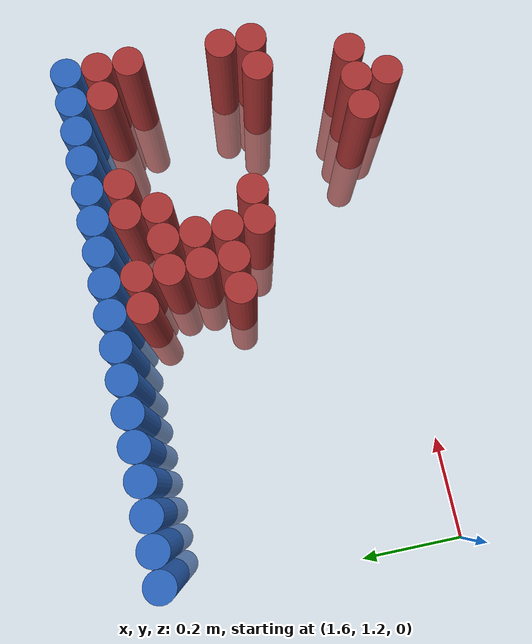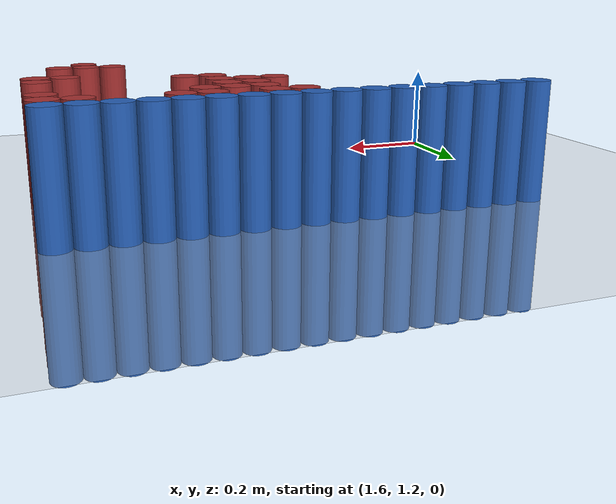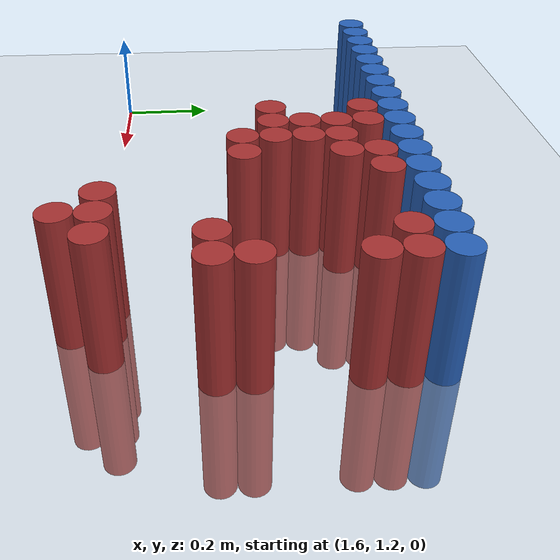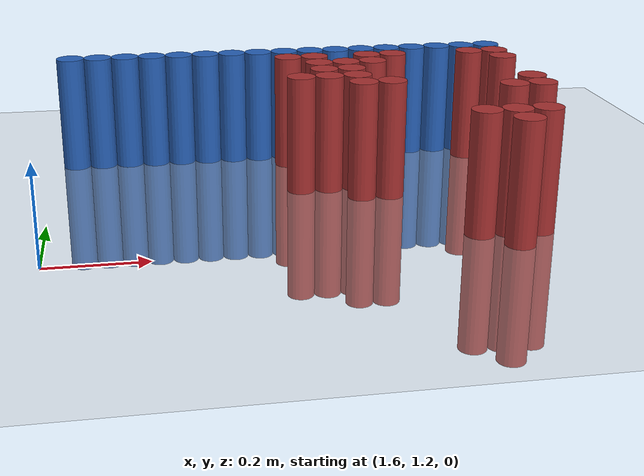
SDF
<sdf version="1.6">
 <world name="default">
  <model name="ground_plane">
   <static>1</static>
   <link name="link">
    <collision name="collision">
     <geometry><plane><normal>0 0 1</normal><size>100 100</size></plane></geometry>
     <surface><friction><ode><mu>100</mu><mu2>50</mu2></ode></friction></surface>
    </collision>
    <visual name="visual">
     <cast_shadows>0</cast_shadows>
     <geometry><plane><normal>0 0 1</normal><size>100 100</size></plane></geometry>
     <material>
      <script><uri>file://media/materials/scripts/gazebo.material</uri><name>Gazebo/Grey</name></script>
     </material>
    </visual>
   </link>
  </model>
  <model name="unit_cylinder_82">
   <static>1</static>
   <pose>1.650000 1.770000 0.000000 0.000000 0.000000 0.000000</pose>
   <link name="link">
    <inertial>
     <mass>1</mass>
     <inertia><ixx>0.145833</ixx><ixy>0</ixy><ixz>0</ixz><iyy>0.145833</iyy><iyz>0</iyz><izz>0.125</izz></inertia>
    </inertial>
    <collision name="collision">
     <geometry><cylinder><radius>0.030000</radius><length>0.5</length></cylinder></geometry>
    </collision>
    <visual name="visual">
     <geometry><cylinder><radius>0.030000</radius><length>0.5</length></cylinder></geometry>
     <material>
      <ambient>0.152000 0.379000 0.720000 1</ambient>
      <diffuse>0.152000 0.379000 0.720000 1</diffuse>
     </material>
     <material>
      <script><name>Gazebo/Grey</name><uri>file://media/materials/scripts/gazebo.material</uri></script>
     </material>
    </visual>
   </link>
  </model>
  <model name="unit_cylinder_84">
   <static>1</static>
   <pose>1.710000 1.770000 0.000000 0.000000 0.000000 0.000000</pose>
   <link name="link">
    <inertial>
     <mass>1</mass>
     <inertia><ixx>0.145833</ixx><ixy>0</ixy><ixz>0</ixz><iyy>0.145833</iyy><iyz>0</iyz><izz>0.125</izz></inertia>
    </inertial>
    <collision name="collision">
     <geometry><cylinder><radius>0.030000</radius><length>0.5</length></cylinder></geometry>
    </collision>
    <visual name="visual">
     <geometry><cylinder><radius>0.030000</radius><length>0.5</length></cylinder></geometry>
     <material>
      <ambient>0.152000 0.379000 0.720000 1</ambient>
      <diffuse>0.152000 0.379000 0.720000 1</diffuse>
     </material>
     <material>
      <script><name>Gazebo/Grey</name><uri>file://media/materials/scripts/gazebo.material</uri></script>
     </material>
    </visual>
   </link>
  </model>
  <model name="unit_cylinder_86">
   <static>1</static>
   <pose>1.770000 1.770000 0.000000 0.000000 0.000000 0.000000</pose>
   <link name="link">
    <inertial>
     <mass>1</mass>
     <inertia><ixx>0.145833</ixx><ixy>0</ixy><ixz>0</ixz><iyy>0.145833</iyy><iyz>0</iyz><izz>0.125</izz></inertia>
    </inertial>
    <collision name="collision">
     <geometry><cylinder><radius>0.030000</radius><length>0.5</length></cylinder></geometry>
    </collision>
    <visual name="visual">
     <geometry><cylinder><radius>0.030000</radius><length>0.5</length></cylinder></geometry>
     <material>
      <ambient>0.152000 0.379000 0.720000 1</ambient>
      <diffuse>0.152000 0.379000 0.720000 1</diffuse>
     </material>
     <material>
      <script><name>Gazebo/Grey</name><uri>file://media/materials/scripts/gazebo.material</uri></script>
     </material>
    </visual>
   </link>
  </model>
  <model name="unit_cylinder_88">
   <static>1</static>
   <pose>1.830000 1.770000 0.000000 0.000000 0.000000 0.000000</pose>
   <link name="link">
    <inertial>
     <mass>1</mass>
     <inertia><ixx>0.145833</ixx><ixy>0</ixy><ixz>0</ixz><iyy>0.145833</iyy><iyz>0</iyz><izz>0.125</izz></inertia>
    </inertial>
    <collision name="collision">
     <geometry><cylinder><radius>0.030000</radius><length>0.5</length></cylinder></geometry>
    </collision>
    <visual name="visual">
     <geometry><cylinder><radius>0.030000</radius><length>0.5</length></cylinder></geometry>
     <material>
      <ambient>0.152000 0.379000 0.720000 1</ambient>
      <diffuse>0.152000 0.379000 0.720000 1</diffuse>
     </material>
     <material>
      <script><name>Gazebo/Grey</name><uri>file://media/materials/scripts/gazebo.material</uri></script>
     </material>
    </visual>
   </link>
  </model>
  <model name="unit_cylinder_90">
   <static>1</static>
   <pose>1.890000 1.770000 0.000000 0.000000 0.000000 0.000000</pose>
   <link name="link">
    <inertial>
     <mass>1</mass>
     <inertia><ixx>0.145833</ixx><ixy>0</ixy><ixz>0</ixz><iyy>0.145833</iyy><iyz>0</iyz><izz>0.125</izz></inertia>
    </inertial>
    <collision name="collision">
     <geometry><cylinder><radius>0.030000</radius><length>0.5</length></cylinder></geometry>
    </collision>
    <visual name="visual">
     <geometry><cylinder><radius>0.030000</radius><length>0.5</length></cylinder></geometry>
     <material>
      <ambient>0.152000 0.379000 0.720000 1</ambient>
      <diffuse>0.152000 0.379000 0.720000 1</diffuse>
     </material>
     <material>
      <script><name>Gazebo/Grey</name><uri>file://media/materials/scripts/gazebo.material</uri></script>
     </material>
    </visual>
   </link>
  </model>
  <model name="unit_cylinder_92">
   <static>1</static>
   <pose>1.950000 1.770000 0.000000 0.000000 0.000000 0.000000</pose>
   <link name="link">
    <inertial>
     <mass>1</mass>
     <inertia><ixx>0.145833</ixx><ixy>0</ixy><ixz>0</ixz><iyy>0.145833</iyy><iyz>0</iyz><izz>0.125</izz></inertia>
    </inertial>
    <collision name="collision">
     <geometry><cylinder><radius>0.030000</radius><length>0.5</length></cylinder></geometry>
    </collision>
    <visual name="visual">
     <geometry><cylinder><radius>0.030000</radius><length>0.5</length></cylinder></geometry>
     <material>
      <ambient>0.152000 0.379000 0.720000 1</ambient>
      <diffuse>0.152000 0.379000 0.720000 1</diffuse>
     </material>
     <material>
      <script><name>Gazebo/Grey</name><uri>file://media/materials/scripts/gazebo.material</uri></script>
     </material>
    </visual>
   </link>
  </model>
  <model name="unit_cylinder_94">
   <static>1</static>
   <pose>2.010000 1.770000 0.000000 0.000000 0.000000 0.000000</pose>
   <link name="link">
    <inertial>
     <mass>1</mass>
     <inertia><ixx>0.145833</ixx><ixy>0</ixy><ixz>0</ixz><iyy>0.145833</iyy><iyz>0</iyz><izz>0.125</izz></inertia>
    </inertial>
    <collision name="collision">
     <geometry><cylinder><radius>0.030000</radius><length>0.5</length></cylinder></geometry>
    </collision>
    <visual name="visual">
     <geometry><cylinder><radius>0.030000</radius><length>0.5</length></cylinder></geometry>
     <material>
      <ambient>0.152000 0.379000 0.720000 1</ambient>
      <diffuse>0.152000 0.379000 0.720000 1</diffuse>
     </material>
     <material>
      <script><name>Gazebo/Grey</name><uri>file://media/materials/scripts/gazebo.material</uri></script>
     </material>
    </visual>
   </link>
  </model>
  <model name="unit_cylinder_95">
   <static>1</static>
   <pose>2.070000 1.770000 0.000000 0.000000 0.000000 0.000000</pose>
   <link name="link">
    <inertial>
     <mass>1</mass>
     <inertia><ixx>0.145833</ixx><ixy>0</ixy><ixz>0</ixz><iyy>0.145833</iyy><iyz>0</iyz><izz>0.125</izz></inertia>
    </inertial>
    <collision name="collision">
     <geometry><cylinder><radius>0.030000</radius><length>0.5</length></cylinder></geometry>
    </collision>
    <visual name="visual">
     <geometry><cylinder><radius>0.030000</radius><length>0.5</length></cylinder></geometry>
     <material>
      <ambient>0.152000 0.379000 0.720000 1</ambient>
      <diffuse>0.152000 0.379000 0.720000 1</diffuse>
     </material>
     <material>
      <script><name>Gazebo/Grey</name><uri>file://media/materials/scripts/gazebo.material</uri></script>
     </material>
    </visual>
   </link>
  </model>
  <model name="unit_cylinder_96">
   <static>1</static>
   <pose>2.130000 1.770000 0.000000 0.000000 0.000000 0.000000</pose>
   <link name="link">
    <inertial>
     <mass>1</mass>
     <inertia><ixx>0.145833</ixx><ixy>0</ixy><ixz>0</ixz><iyy>0.145833</iyy><iyz>0</iyz><izz>0.125</izz></inertia>
    </inertial>
    <collision name="collision">
     <geometry><cylinder><radius>0.030000</radius><length>0.5</length></cylinder></geometry>
    </collision>
    <visual name="visual">
     <geometry><cylinder><radius>0.030000</radius><length>0.5</length></cylinder></geometry>
     <material>
      <ambient>0.152000 0.379000 0.720000 1</ambient>
      <diffuse>0.152000 0.379000 0.720000 1</diffuse>
     </material>
     <material>
      <script><name>Gazebo/Grey</name><uri>file://media/materials/scripts/gazebo.material</uri></script>
     </material>
    </visual>
   </link>
  </model>
  <model name="unit_cylinder_97">
   <static>1</static>
   <pose>2.190000 1.770000 0.000000 0.000000 0.000000 0.000000</pose>
   <link name="link">
    <inertial>
     <mass>1</mass>
     <inertia><ixx>0.145833</ixx><ixy>0</ixy><ixz>0</ixz><iyy>0.145833</iyy><iyz>0</iyz><izz>0.125</izz></inertia>
    </inertial>
    <collision name="collision">
     <geometry><cylinder><radius>0.030000</radius><length>0.5</length></cylinder></geometry>
    </collision>
    <visual name="visual">
     <geometry><cylinder><radius>0.030000</radius><length>0.5</length></cylinder></geometry>
     <material>
      <ambient>0.152000 0.379000 0.720000 1</ambient>
      <diffuse>0.152000 0.379000 0.720000 1</diffuse>
     </material>
     <material>
      <script><name>Gazebo/Grey</name><uri>file://media/materials/scripts/gazebo.material</uri></script>
     </material>
    </visual>
   </link>
  </model>
  <model name="unit_cylinder_98">
   <static>1</static>
   <pose>2.250000 1.770000 0.000000 0.000000 0.000000 0.000000</pose>
   <link name="link">
    <inertial>
     <mass>1</mass>
     <inertia><ixx>0.145833</ixx><ixy>0</ixy><ixz>0</ixz><iyy>0.145833</iyy><iyz>0</iyz><izz>0.125</izz></inertia>
    </inertial>
    <collision name="collision">
     <geometry><cylinder><radius>0.030000</radius><length>0.5</length></cylinder></geometry>
    </collision>
    <visual name="visual">
     <geometry><cylinder><radius>0.030000</radius><length>0.5</length></cylinder></geometry>
     <material>
      <ambient>0.152000 0.379000 0.720000 1</ambient>
      <diffuse>0.152000 0.379000 0.720000 1</diffuse>
     </material>
     <material>
      <script><name>Gazebo/Grey</name><uri>file://media/materials/scripts/gazebo.material</uri></script>
     </material>
    </visual>
   </link>
  </model>
  <model name="unit_cylinder_99">
   <static>1</static>
   <pose>2.310000 1.770000 0.000000 0.000000 0.000000 0.000000</pose>
   <link name="link">
    <inertial>
     <mass>1</mass>
     <inertia><ixx>0.145833</ixx><ixy>0</ixy><ixz>0</ixz><iyy>0.145833</iyy><iyz>0</iyz><izz>0.125</izz></inertia>
    </inertial>
    <collision name="collision">
     <geometry><cylinder><radius>0.030000</radius><length>0.5</length></cylinder></geometry>
    </collision>
    <visual name="visual">
     <geometry><cylinder><radius>0.030000</radius><length>0.5</length></cylinder></geometry>
     <material>
      <ambient>0.152000 0.379000 0.720000 1</ambient>
      <diffuse>0.152000 0.379000 0.720000 1</diffuse>
     </material>
     <material>
      <script><name>Gazebo/Grey</name><uri>file://media/materials/scripts/gazebo.material</uri></script>
     </material>
    </visual>
   </link>
  </model>
  <model name="unit_cylinder_100">
   <static>1</static>
   <pose>2.370000 1.770000 0.000000 0.000000 0.000000 0.000000</pose>
   <link name="link">
    <inertial>
     <mass>1</mass>
     <inertia><ixx>0.145833</ixx><ixy>0</ixy><ixz>0</ixz><iyy>0.145833</iyy><iyz>0</iyz><izz>0.125</izz></inertia>
    </inertial>
    <collision name="collision">
     <geometry><cylinder><radius>0.030000</radius><length>0.5</length></cylinder></geometry>
    </collision>
    <visual name="visual">
     <geometry><cylinder><radius>0.030000</radius><length>0.5</length></cylinder></geometry>
     <material>
      <ambient>0.152000 0.379000 0.720000 1</ambient>
      <diffuse>0.152000 0.379000 0.720000 1</diffuse>
     </material>
     <material>
      <script><name>Gazebo/Grey</name><uri>file://media/materials/scripts/gazebo.material</uri></script>
     </material>
    </visual>
   </link>
  </model>
  <model name="unit_cylinder_101">
   <static>1</static>
   <pose>2.430000 1.770000 0.000000 0.000000 0.000000 0.000000</pose>
   <link name="link">
    <inertial>
     <mass>1</mass>
     <inertia><ixx>0.145833</ixx><ixy>0</ixy><ixz>0</ixz><iyy>0.145833</iyy><iyz>0</iyz><izz>0.125</izz></inertia>
    </inertial>
    <collision name="collision">
     <geometry><cylinder><radius>0.030000</radius><length>0.5</length></cylinder></geometry>
    </collision>
    <visual name="visual">
     <geometry><cylinder><radius>0.030000</radius><length>0.5</length></cylinder></geometry>
     <material>
      <ambient>0.152000 0.379000 0.720000 1</ambient>
      <diffuse>0.152000 0.379000 0.720000 1</diffuse>
     </material>
     <material>
      <script><name>Gazebo/Grey</name><uri>file://media/materials/scripts/gazebo.material</uri></script>
     </material>
    </visual>
   </link>
  </model>
  <model name="unit_cylinder_102">
   <static>1</static>
   <pose>2.490000 1.770000 0.000000 0.000000 0.000000 0.000000</pose>
   <link name="link">
    <inertial>
     <mass>1</mass>
     <inertia><ixx>0.145833</ixx><ixy>0</ixy><ixz>0</ixz><iyy>0.145833</iyy><iyz>0</iyz><izz>0.125</izz></inertia>
    </inertial>
    <collision name="collision">
     <geometry><cylinder><radius>0.030000</radius><length>0.5</length></cylinder></geometry>
    </collision>
    <visual name="visual">
     <geometry><cylinder><radius>0.030000</radius><length>0.5</length></cylinder></geometry>
     <material>
      <ambient>0.152000 0.379000 0.720000 1</ambient>
      <diffuse>0.152000 0.379000 0.720000 1</diffuse>
     </material>
     <material>
      <script><name>Gazebo/Grey</name><uri>file://media/materials/scripts/gazebo.material</uri></script>
     </material>
    </visual>
   </link>
  </model>
  <model name="unit_cylinder_103">
   <static>1</static>
   <pose>2.550000 1.770000 0.000000 0.000000 0.000000 0.000000</pose>
   <link name="link">
    <inertial>
     <mass>1</mass>
     <inertia><ixx>0.145833</ixx><ixy>0</ixy><ixz>0</ixz><iyy>0.145833</iyy><iyz>0</iyz><izz>0.125</izz></inertia>
    </inertial>
    <collision name="collision">
     <geometry><cylinder><radius>0.030000</radius><length>0.5</length></cylinder></geometry>
    </collision>
    <visual name="visual">
     <geometry><cylinder><radius>0.030000</radius><length>0.5</length></cylinder></geometry>
     <material>
      <ambient>0.152000 0.379000 0.720000 1</ambient>
      <diffuse>0.152000 0.379000 0.720000 1</diffuse>
     </material>
     <material>
      <script><name>Gazebo/Grey</name><uri>file://media/materials/scripts/gazebo.material</uri></script>
     </material>
    </visual>
   </link>
  </model>
  <model name="unit_cylinder_104">
   <static>1</static>
   <pose>2.610000 1.770000 0.000000 0.000000 0.000000 0.000000</pose>
   <link name="link">
    <inertial>
     <mass>1</mass>
     <inertia><ixx>0.145833</ixx><ixy>0</ixy><ixz>0</ixz><iyy>0.145833</iyy><iyz>0</iyz><izz>0.125</izz></inertia>
    </inertial>
    <collision name="collision">
     <geometry><cylinder><radius>0.030000</radius><length>0.5</length></cylinder></geometry>
    </collision>
    <visual name="visual">
     <geometry><cylinder><radius>0.030000</radius><length>0.5</length></cylinder></geometry>
     <material>
      <ambient>0.152000 0.379000 0.720000 1</ambient>
      <diffuse>0.152000 0.379000 0.720000 1</diffuse>
     </material>
     <material>
      <script><name>Gazebo/Grey</name><uri>file://media/materials/scripts/gazebo.material</uri></script>
     </material>
    </visual>
   </link>
  </model>
  <model name="unit_cylinder_125">
   <static>1</static>
   <pose>2.130000 1.710000 0.000000 0.000000 0.000000 0.000000</pose>
   <link name="link">
    <inertial>
     <mass>1</mass>
     <inertia><ixx>0.145833</ixx><ixy>0</ixy><ixz>0</ixz><iyy>0.145833</iyy><iyz>0</iyz><izz>0.125</izz></inertia>
    </inertial>
    <collision name="collision">
     <geometry><cylinder><radius>0.030000</radius><length>0.5</length></cylinder></geometry>
    </collision>
    <visual name="visual">
     <geometry><cylinder><radius>0.030000</radius><length>0.5</length></cylinder></geometry>
     <material>
      <ambient>0.648000 0.192000 0.192000 1</ambient>
      <diffuse>0.648000 0.192000 0.192000 1</diffuse>
     </material>
     <material>
      <script><name>Gazebo/Grey</name><uri>file://media/materials/scripts/gazebo.material</uri></script>
     </material>
    </visual>
   </link>
  </model>
  <model name="unit_cylinder_126">
   <static>1</static>
   <pose>2.190000 1.710000 0.000000 0.000000 0.000000 0.000000</pose>
   <link name="link">
    <inertial>
     <mass>1</mass>
     <inertia><ixx>0.145833</ixx><ixy>0</ixy><ixz>0</ixz><iyy>0.145833</iyy><iyz>0</iyz><izz>0.125</izz></inertia>
    </inertial>
    <collision name="collision">
     <geometry><cylinder><radius>0.030000</radius><length>0.5</length></cylinder></geometry>
    </collision>
    <visual name="visual">
     <geometry><cylinder><radius>0.030000</radius><length>0.5</length></cylinder></geometry>
     <material>
      <ambient>0.648000 0.192000 0.192000 1</ambient>
      <diffuse>0.648000 0.192000 0.192000 1</diffuse>
     </material>
     <material>
      <script><name>Gazebo/Grey</name><uri>file://media/materials/scripts/gazebo.material</uri></script>
     </material>
    </visual>
   </link>
  </model>
  <model name="unit_cylinder_127">
   <static>1</static>
   <pose>2.310000 1.710000 0.000000 0.000000 0.000000 0.000000</pose>
   <link name="link">
    <inertial>
     <mass>1</mass>
     <inertia><ixx>0.145833</ixx><ixy>0</ixy><ixz>0</ixz><iyy>0.145833</iyy><iyz>0</iyz><izz>0.125</izz></inertia>
    </inertial>
    <collision name="collision">
     <geometry><cylinder><radius>0.030000</radius><length>0.5</length></cylinder></geometry>
    </collision>
    <visual name="visual">
     <geometry><cylinder><radius>0.030000</radius><length>0.5</length></cylinder></geometry>
     <material>
      <ambient>0.648000 0.192000 0.192000 1</ambient>
      <diffuse>0.648000 0.192000 0.192000 1</diffuse>
     </material>
     <material>
      <script><name>Gazebo/Grey</name><uri>file://media/materials/scripts/gazebo.material</uri></script>
     </material>
    </visual>
   </link>
  </model>
  <model name="unit_cylinder_128">
   <static>1</static>
   <pose>2.370000 1.710000 0.000000 0.000000 0.000000 0.000000</pose>
   <link name="link">
    <inertial>
     <mass>1</mass>
     <inertia><ixx>0.145833</ixx><ixy>0</ixy><ixz>0</ixz><iyy>0.145833</iyy><iyz>0</iyz><izz>0.125</izz></inertia>
    </inertial>
    <collision name="collision">
     <geometry><cylinder><radius>0.030000</radius><length>0.5</length></cylinder></geometry>
    </collision>
    <visual name="visual">
     <geometry><cylinder><radius>0.030000</radius><length>0.5</length></cylinder></geometry>
     <material>
      <ambient>0.648000 0.192000 0.192000 1</ambient>
      <diffuse>0.648000 0.192000 0.192000 1</diffuse>
     </material>
     <material>
      <script><name>Gazebo/Grey</name><uri>file://media/materials/scripts/gazebo.material</uri></script>
     </material>
    </visual>
   </link>
  </model>
  <model name="unit_cylinder_129">
   <static>1</static>
   <pose>2.550000 1.710000 0.000000 0.000000 0.000000 0.000000</pose>
   <link name="link">
    <inertial>
     <mass>1</mass>
     <inertia><ixx>0.145833</ixx><ixy>0</ixy><ixz>0</ixz><iyy>0.145833</iyy><iyz>0</iyz><izz>0.125</izz></inertia>
    </inertial>
    <collision name="collision">
     <geometry><cylinder><radius>0.030000</radius><length>0.5</length></cylinder></geometry>
    </collision>
    <visual name="visual">
     <geometry><cylinder><radius>0.030000</radius><length>0.5</length></cylinder></geometry>
     <material>
      <ambient>0.648000 0.192000 0.192000 1</ambient>
      <diffuse>0.648000 0.192000 0.192000 1</diffuse>
     </material>
     <material>
      <script><name>Gazebo/Grey</name><uri>file://media/materials/scripts/gazebo.material</uri></script>
     </material>
    </visual>
   </link>
  </model>
  <model name="unit_cylinder_130">
   <static>1</static>
   <pose>2.610000 1.710000 0.000000 0.000000 0.000000 0.000000</pose>
   <link name="link">
    <inertial>
     <mass>1</mass>
     <inertia><ixx>0.145833</ixx><ixy>0</ixy><ixz>0</ixz><iyy>0.145833</iyy><iyz>0</iyz><izz>0.125</izz></inertia>
    </inertial>
    <collision name="collision">
     <geometry><cylinder><radius>0.030000</radius><length>0.5</length></cylinder></geometry>
    </collision>
    <visual name="visual">
     <geometry><cylinder><radius>0.030000</radius><length>0.5</length></cylinder></geometry>
     <material>
      <ambient>0.648000 0.192000 0.192000 1</ambient>
      <diffuse>0.648000 0.192000 0.192000 1</diffuse>
     </material>
     <material>
      <script><name>Gazebo/Grey</name><uri>file://media/materials/scripts/gazebo.material</uri></script>
     </material>
    </visual>
   </link>
  </model>
  <model name="unit_cylinder_149">
   <static>1</static>
   <pose>2.190000 1.650000 0.000000 0.000000 0.000000 0.000000</pose>
   <link name="link">
    <inertial>
     <mass>1</mass>
     <inertia><ixx>0.145833</ixx><ixy>0</ixy><ixz>0</ixz><iyy>0.145833</iyy><iyz>0</iyz><izz>0.125</izz></inertia>
    </inertial>
    <collision name="collision">
     <geometry><cylinder><radius>0.030000</radius><length>0.5</length></cylinder></geometry>
    </collision>
    <visual name="visual">
     <geometry><cylinder><radius>0.030000</radius><length>0.5</length></cylinder></geometry>
     <material>
      <ambient>0.648000 0.192000 0.192000 1</ambient>
      <diffuse>0.648000 0.192000 0.192000 1</diffuse>
     </material>
     <material>
      <script><name>Gazebo/Grey</name><uri>file://media/materials/scripts/gazebo.material</uri></script>
     </material>
    </visual>
   </link>
  </model>
  <model name="unit_cylinder_150">
   <static>1</static>
   <pose>2.250000 1.650000 0.000000 0.000000 0.000000 0.000000</pose>
   <link name="link">
    <inertial>
     <mass>1</mass>
     <inertia><ixx>0.145833</ixx><ixy>0</ixy><ixz>0</ixz><iyy>0.145833</iyy><iyz>0</iyz><izz>0.125</izz></inertia>
    </inertial>
    <collision name="collision">
     <geometry><cylinder><radius>0.030000</radius><length>0.5</length></cylinder></geometry>
    </collision>
    <visual name="visual">
     <geometry><cylinder><radius>0.030000</radius><length>0.5</length></cylinder></geometry>
     <material>
      <ambient>0.648000 0.192000 0.192000 1</ambient>
      <diffuse>0.648000 0.192000 0.192000 1</diffuse>
     </material>
     <material>
      <script><name>Gazebo/Grey</name><uri>file://media/materials/scripts/gazebo.material</uri></script>
     </material>
    </visual>
   </link>
  </model>
  <model name="unit_cylinder_151">
   <static>1</static>
   <pose>2.310000 1.650000 0.000000 0.000000 0.000000 0.000000</pose>
   <link name="link">
    <inertial>
     <mass>1</mass>
     <inertia><ixx>0.145833</ixx><ixy>0</ixy><ixz>0</ixz><iyy>0.145833</iyy><iyz>0</iyz><izz>0.125</izz></inertia>
    </inertial>
    <collision name="collision">
     <geometry><cylinder><radius>0.030000</radius><length>0.5</length></cylinder></geometry>
    </collision>
    <visual name="visual">
     <geometry><cylinder><radius>0.030000</radius><length>0.5</length></cylinder></geometry>
     <material>
      <ambient>0.648000 0.192000 0.192000 1</ambient>
      <diffuse>0.648000 0.192000 0.192000 1</diffuse>
     </material>
     <material>
      <script><name>Gazebo/Grey</name><uri>file://media/materials/scripts/gazebo.material</uri></script>
     </material>
    </visual>
   </link>
  </model>
  <model name="unit_cylinder_152">
   <static>1</static>
   <pose>2.610000 1.650000 0.000000 0.000000 0.000000 0.000000</pose>
   <link name="link">
    <inertial>
     <mass>1</mass>
     <inertia><ixx>0.145833</ixx><ixy>0</ixy><ixz>0</ixz><iyy>0.145833</iyy><iyz>0</iyz><izz>0.125</izz></inertia>
    </inertial>
    <collision name="collision">
     <geometry><cylinder><radius>0.030000</radius><length>0.5</length></cylinder></geometry>
    </collision>
    <visual name="visual">
     <geometry><cylinder><radius>0.030000</radius><length>0.5</length></cylinder></geometry>
     <material>
      <ambient>0.648000 0.192000 0.192000 1</ambient>
      <diffuse>0.648000 0.192000 0.192000 1</diffuse>
     </material>
     <material>
      <script><name>Gazebo/Grey</name><uri>file://media/materials/scripts/gazebo.material</uri></script>
     </material>
    </visual>
   </link>
  </model>
  <model name="unit_cylinder_160">
   <static>1</static>
   <pose>2.190000 1.590000 0.000000 0.000000 0.000000 0.000000</pose>
   <link name="link">
    <inertial>
     <mass>1</mass>
     <inertia><ixx>0.145833</ixx><ixy>0</ixy><ixz>0</ixz><iyy>0.145833</iyy><iyz>0</iyz><izz>0.125</izz></inertia>
    </inertial>
    <collision name="collision">
     <geometry><cylinder><radius>0.030000</radius><length>0.5</length></cylinder></geometry>
    </collision>
    <visual name="visual">
     <geometry><cylinder><radius>0.030000</radius><length>0.5</length></cylinder></geometry>
     <material>
      <ambient>0.648000 0.192000 0.192000 1</ambient>
      <diffuse>0.648000 0.192000 0.192000 1</diffuse>
     </material>
     <material>
      <script><name>Gazebo/Grey</name><uri>file://media/materials/scripts/gazebo.material</uri></script>
     </material>
    </visual>
   </link>
  </model>
  <model name="unit_cylinder_161">
   <static>1</static>
   <pose>2.250000 1.590000 0.000000 0.000000 0.000000 0.000000</pose>
   <link name="link">
    <inertial>
     <mass>1</mass>
     <inertia><ixx>0.145833</ixx><ixy>0</ixy><ixz>0</ixz><iyy>0.145833</iyy><iyz>0</iyz><izz>0.125</izz></inertia>
    </inertial>
    <collision name="collision">
     <geometry><cylinder><radius>0.030000</radius><length>0.5</length></cylinder></geometry>
    </collision>
    <visual name="visual">
     <geometry><cylinder><radius>0.030000</radius><length>0.5</length></cylinder></geometry>
     <material>
      <ambient>0.648000 0.192000 0.192000 1</ambient>
      <diffuse>0.648000 0.192000 0.192000 1</diffuse>
     </material>
     <material>
      <script><name>Gazebo/Grey</name><uri>file://media/materials/scripts/gazebo.material</uri></script>
     </material>
    </visual>
   </link>
  </model>
  <model name="unit_cylinder_164">
   <static>1</static>
   <pose>2.130000 1.530000 0.000000 0.000000 0.000000 0.000000</pose>
   <link name="link">
    <inertial>
     <mass>1</mass>
     <inertia><ixx>0.145833</ixx><ixy>0</ixy><ixz>0</ixz><iyy>0.145833</iyy><iyz>0</iyz><izz>0.125</izz></inertia>
    </inertial>
    <collision name="collision">
     <geometry><cylinder><radius>0.030000</radius><length>0.5</length></cylinder></geometry>
    </collision>
    <visual name="visual">
     <geometry><cylinder><radius>0.030000</radius><length>0.5</length></cylinder></geometry>
     <material>
      <ambient>0.648000 0.192000 0.192000 1</ambient>
      <diffuse>0.648000 0.192000 0.192000 1</diffuse>
     </material>
     <material>
      <script><name>Gazebo/Grey</name><uri>file://media/materials/scripts/gazebo.material</uri></script>
     </material>
    </visual>
   </link>
  </model>
  <model name="unit_cylinder_165">
   <static>1</static>
   <pose>2.190000 1.530000 0.000000 0.000000 0.000000 0.000000</pose>
   <link name="link">
    <inertial>
     <mass>1</mass>
     <inertia><ixx>0.145833</ixx><ixy>0</ixy><ixz>0</ixz><iyy>0.145833</iyy><iyz>0</iyz><izz>0.125</izz></inertia>
    </inertial>
    <collision name="collision">
     <geometry><cylinder><radius>0.030000</radius><length>0.5</length></cylinder></geometry>
    </collision>
    <visual name="visual">
     <geometry><cylinder><radius>0.030000</radius><length>0.5</length></cylinder></geometry>
     <material>
      <ambient>0.648000 0.192000 0.192000 1</ambient>
      <diffuse>0.648000 0.192000 0.192000 1</diffuse>
     </material>
     <material>
      <script><name>Gazebo/Grey</name><uri>file://media/materials/scripts/gazebo.material</uri></script>
     </material>
    </visual>
   </link>
  </model>
  <model name="unit_cylinder_166">
   <static>1</static>
   <pose>2.250000 1.530000 0.000000 0.000000 0.000000 0.000000</pose>
   <link name="link">
    <inertial>
     <mass>1</mass>
     <inertia><ixx>0.145833</ixx><ixy>0</ixy><ixz>0</ixz><iyy>0.145833</iyy><iyz>0</iyz><izz>0.125</izz></inertia>
    </inertial>
    <collision name="collision">
     <geometry><cylinder><radius>0.030000</radius><length>0.5</length></cylinder></geometry>
    </collision>
    <visual name="visual">
     <geometry><cylinder><radius>0.030000</radius><length>0.5</length></cylinder></geometry>
     <material>
      <ambient>0.648000 0.192000 0.192000 1</ambient>
      <diffuse>0.648000 0.192000 0.192000 1</diffuse>
     </material>
     <material>
      <script><name>Gazebo/Grey</name><uri>file://media/materials/scripts/gazebo.material</uri></script>
     </material>
    </visual>
   </link>
  </model>
  <model name="unit_cylinder_171">
   <static>1</static>
   <pose>2.250000 1.470000 0.000000 0.000000 0.000000 0.000000</pose>
   <link name="link">
    <inertial>
     <mass>1</mass>
     <inertia><ixx>0.145833</ixx><ixy>0</ixy><ixz>0</ixz><iyy>0.145833</iyy><iyz>0</iyz><izz>0.125</izz></inertia>
    </inertial>
    <collision name="collision">
     <geometry><cylinder><radius>0.030000</radius><length>0.5</length></cylinder></geometry>
    </collision>
    <visual name="visual">
     <geometry><cylinder><radius>0.030000</radius><length>0.5</length></cylinder></geometry>
     <material>
      <ambient>0.648000 0.192000 0.192000 1</ambient>
      <diffuse>0.648000 0.192000 0.192000 1</diffuse>
     </material>
     <material>
      <script><name>Gazebo/Grey</name><uri>file://media/materials/scripts/gazebo.material</uri></script>
     </material>
    </visual>
   </link>
  </model>
  <model name="unit_cylinder_172">
   <static>1</static>
   <pose>2.310000 1.470000 0.000000 0.000000 0.000000 0.000000</pose>
   <link name="link">
    <inertial>
     <mass>1</mass>
     <inertia><ixx>0.145833</ixx><ixy>0</ixy><ixz>0</ixz><iyy>0.145833</iyy><iyz>0</iyz><izz>0.125</izz></inertia>
    </inertial>
    <collision name="collision">
     <geometry><cylinder><radius>0.030000</radius><length>0.5</length></cylinder></geometry>
    </collision>
    <visual name="visual">
     <geometry><cylinder><radius>0.030000</radius><length>0.5</length></cylinder></geometry>
     <material>
      <ambient>0.648000 0.192000 0.192000 1</ambient>
      <diffuse>0.648000 0.192000 0.192000 1</diffuse>
     </material>
     <material>
      <script><name>Gazebo/Grey</name><uri>file://media/materials/scripts/gazebo.material</uri></script>
     </material>
    </visual>
   </link>
  </model>
  <model name="unit_cylinder_173">
   <static>1</static>
   <pose>2.610000 1.470000 0.000000 0.000000 0.000000 0.000000</pose>
   <link name="link">
    <inertial>
     <mass>1</mass>
     <inertia><ixx>0.145833</ixx><ixy>0</ixy><ixz>0</ixz><iyy>0.145833</iyy><iyz>0</iyz><izz>0.125</izz></inertia>
    </inertial>
    <collision name="collision">
     <geometry><cylinder><radius>0.030000</radius><length>0.5</length></cylinder></geometry>
    </collision>
    <visual name="visual">
     <geometry><cylinder><radius>0.030000</radius><length>0.5</length></cylinder></geometry>
     <material>
      <ambient>0.648000 0.192000 0.192000 1</ambient>
      <diffuse>0.648000 0.192000 0.192000 1</diffuse>
     </material>
     <material>
      <script><name>Gazebo/Grey</name><uri>file://media/materials/scripts/gazebo.material</uri></script>
     </material>
    </visual>
   </link>
  </model>
  <model name="unit_cylinder_184">
   <static>1</static>
   <pose>2.550000 1.410000 0.000000 0.000000 0.000000 0.000000</pose>
   <link name="link">
    <inertial>
     <mass>1</mass>
     <inertia><ixx>0.145833</ixx><ixy>0</ixy><ixz>0</ixz><iyy>0.145833</iyy><iyz>0</iyz><izz>0.125</izz></inertia>
    </inertial>
    <collision name="collision">
     <geometry><cylinder><radius>0.030000</radius><length>0.5</length></cylinder></geometry>
    </collision>
    <visual name="visual">
     <geometry><cylinder><radius>0.030000</radius><length>0.5</length></cylinder></geometry>
     <material>
      <ambient>0.648000 0.192000 0.192000 1</ambient>
      <diffuse>0.648000 0.192000 0.192000 1</diffuse>
     </material>
     <material>
      <script><name>Gazebo/Grey</name><uri>file://media/materials/scripts/gazebo.material</uri></script>
     </material>
    </visual>
   </link>
  </model>
  <model name="unit_cylinder_185">
   <static>1</static>
   <pose>2.610000 1.410000 0.000000 0.000000 0.000000 0.000000</pose>
   <link name="link">
    <inertial>
     <mass>1</mass>
     <inertia><ixx>0.145833</ixx><ixy>0</ixy><ixz>0</ixz><iyy>0.145833</iyy><iyz>0</iyz><izz>0.125</izz></inertia>
    </inertial>
    <collision name="collision">
     <geometry><cylinder><radius>0.030000</radius><length>0.5</length></cylinder></geometry>
    </collision>
    <visual name="visual">
     <geometry><cylinder><radius>0.030000</radius><length>0.5</length></cylinder></geometry>
     <material>
      <ambient>0.648000 0.192000 0.192000 1</ambient>
      <diffuse>0.648000 0.192000 0.192000 1</diffuse>
     </material>
     <material>
      <script><name>Gazebo/Grey</name><uri>file://media/materials/scripts/gazebo.material</uri></script>
     </material>
    </visual>
   </link>
  </model>
  <model name="unit_cylinder_210">
   <static>1</static>
   <pose>2.430000 1.230000 0.000000 0.000000 0.000000 0.000000</pose>
   <link name="link">
    <inertial>
     <mass>1</mass>
     <inertia><ixx>0.145833</ixx><ixy>0</ixy><ixz>0</ixz><iyy>0.145833</iyy><iyz>0</iyz><izz>0.125</izz></inertia>
    </inertial>
    <collision name="collision">
     <geometry><cylinder><radius>0.030000</radius><length>0.5</length></cylinder></geometry>
    </collision>
    <visual name="visual">
     <geometry><cylinder><radius>0.030000</radius><length>0.5</length></cylinder></geometry>
     <material>
      <ambient>0.648000 0.192000 0.192000 1</ambient>
      <diffuse>0.648000 0.192000 0.192000 1</diffuse>
     </material>
     <material>
      <script><name>Gazebo/Grey</name><uri>file://media/materials/scripts/gazebo.material</uri></script>
     </material>
    </visual>
   </link>
  </model>
  <model name="unit_cylinder_211">
   <static>1</static>
   <pose>2.490000 1.230000 0.000000 0.000000 0.000000 0.000000</pose>
   <link name="link">
    <inertial>
     <mass>1</mass>
     <inertia><ixx>0.145833</ixx><ixy>0</ixy><ixz>0</ixz><iyy>0.145833</iyy><iyz>0</iyz><izz>0.125</izz></inertia>
    </inertial>
    <collision name="collision">
     <geometry><cylinder><radius>0.030000</radius><length>0.5</length></cylinder></geometry>
    </collision>
    <visual name="visual">
     <geometry><cylinder><radius>0.030000</radius><length>0.5</length></cylinder></geometry>
     <material>
      <ambient>0.648000 0.192000 0.192000 1</ambient>
      <diffuse>0.648000 0.192000 0.192000 1</diffuse>
     </material>
     <material>
      <script><name>Gazebo/Grey</name><uri>file://media/materials/scripts/gazebo.material</uri></script>
     </material>
    </visual>
   </link>
  </model>
  <model name="unit_cylinder_212">
   <static>1</static>
   <pose>2.550000 1.230000 0.000000 0.000000 0.000000 0.000000</pose>
   <link name="link">
    <inertial>
     <mass>1</mass>
     <inertia><ixx>0.145833</ixx><ixy>0</ixy><ixz>0</ixz><iyy>0.145833</iyy><iyz>0</iyz><izz>0.125</izz></inertia>
    </inertial>
    <collision name="collision">
     <geometry><cylinder><radius>0.030000</radius><length>0.5</length></cylinder></geometry>
    </collision>
    <visual name="visual">
     <geometry><cylinder><radius>0.030000</radius><length>0.5</length></cylinder></geometry>
     <material>
      <ambient>0.648000 0.192000 0.192000 1</ambient>
      <diffuse>0.648000 0.192000 0.192000 1</diffuse>
     </material>
     <material>
      <script><name>Gazebo/Grey</name><uri>file://media/materials/scripts/gazebo.material</uri></script>
     </material>
    </visual>
   </link>
  </model>
  <model name="unit_cylinder_220">
   <static>1</static>
   <pose>2.490000 1.170000 0.000000 0.000000 0.000000 0.000000</pose>
   <link name="link">
    <inertial>
     <mass>1</mass>
     <inertia><ixx>0.145833</ixx><ixy>0</ixy><ixz>0</ixz><iyy>0.145833</iyy><iyz>0</iyz><izz>0.125</izz></inertia>
    </inertial>
    <collision name="collision">
     <geometry><cylinder><radius>0.030000</radius><length>0.5</length></cylinder></geometry>
    </collision>
    <visual name="visual">
     <geometry><cylinder><radius>0.030000</radius><length>0.5</length></cylinder></geometry>
     <material>
      <ambient>0.648000 0.192000 0.192000 1</ambient>
      <diffuse>0.648000 0.192000 0.192000 1</diffuse>
     </material>
     <material>
      <script><name>Gazebo/Grey</name><uri>file://media/materials/scripts/gazebo.material</uri></script>
     </material>
    </visual>
   </link>
  </model>
 </world>
</sdf>
